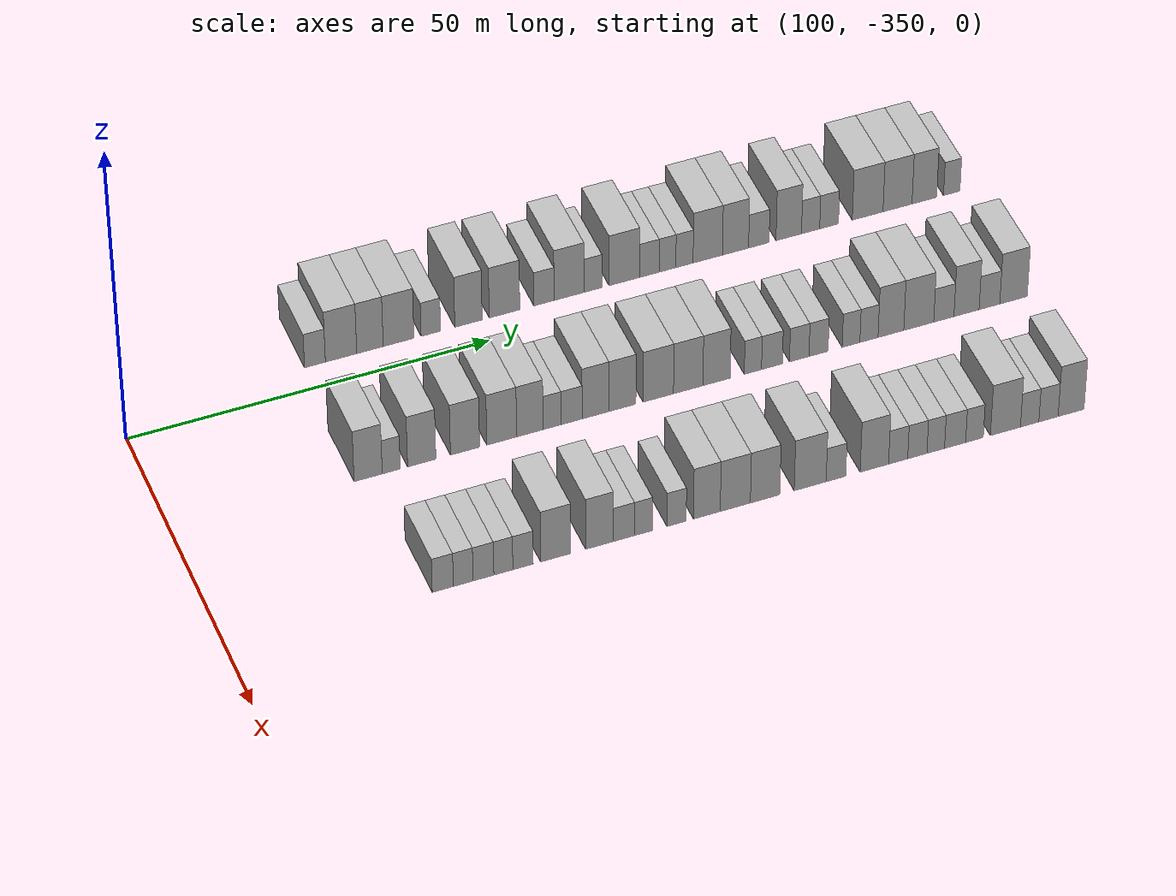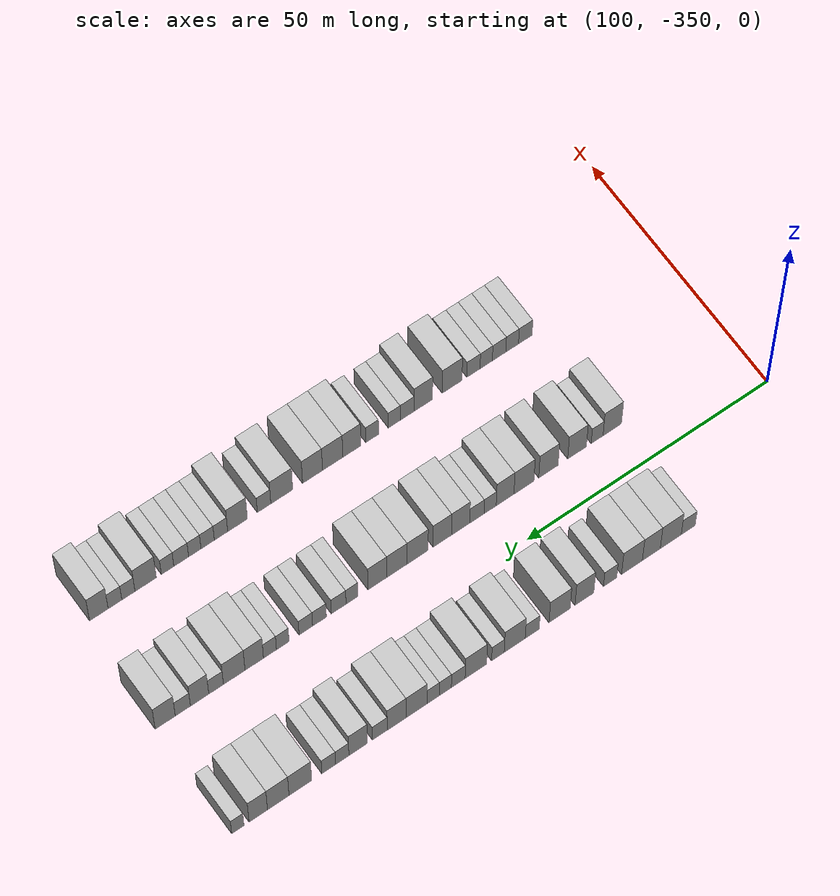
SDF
<sdf version="1.6">
 <world name="default">
  <model name="building_581">
   <static>1</static>
   <pose>91.0000 -322.8173 0 0.000000 0.000000 0.000000</pose>
   <link name="link">
    <pose>0 0 3.00 0 0 0</pose>
    <collision name="collision"><geometry><box><size>10.0000 2.8853 6.0000</size></box></geometry></collision>
    <visual name="visual">
     <cast_shadows>0</cast_shadows>
     <geometry><box><size>10.0000 2.8853 6.0000</size></box></geometry>
     <material>
      <script>
       <uri>model://HANNAS_wall/materials/scripts</uri>
       <uri>model://HANNAS_wall/materials/textures</uri>
       <name>vrc/HANNAS_wall</name>
      </script>
     </material>
    </visual>
   </link>
  </model>
  <model name="building_582">
   <static>1</static>
   <pose>91.0000 -319.1993 0 0.000000 0.000000 0.000000</pose>
   <link name="link">
    <pose>0 0 4.50 0 0 0</pose>
    <collision name="collision"><geometry><box><size>10.0000 4.3508 9.0000</size></box></geometry></collision>
    <visual name="visual">
     <cast_shadows>0</cast_shadows>
     <geometry><box><size>10.0000 4.3508 9.0000</size></box></geometry>
     <material>
      <script>
       <uri>model://HANNAS_wall/materials/scripts</uri>
       <uri>model://HANNAS_wall/materials/textures</uri>
       <name>vrc/HANNAS_wall</name>
      </script>
     </material>
    </visual>
   </link>
  </model>
  <model name="building_583">
   <static>1</static>
   <pose>91.0000 -315.1834 0 0.000000 0.000000 0.000000</pose>
   <link name="link">
    <pose>0 0 4.50 0 0 0</pose>
    <collision name="collision"><geometry><box><size>10.0000 3.6809 9.0000</size></box></geometry></collision>
    <visual name="visual">
     <cast_shadows>0</cast_shadows>
     <geometry><box><size>10.0000 3.6809 9.0000</size></box></geometry>
     <material>
      <script>
       <uri>model://HANNAS_wall/materials/scripts</uri>
       <uri>model://HANNAS_wall/materials/textures</uri>
       <name>vrc/HANNAS_wall</name>
      </script>
     </material>
    </visual>
   </link>
  </model>
  <model name="building_584">
   <static>1</static>
   <pose>91.0000 -311.2035 0 0.000000 0.000000 0.000000</pose>
   <link name="link">
    <pose>0 0 4.50 0 0 0</pose>
    <collision name="collision"><geometry><box><size>10.0000 4.2788 9.0000</size></box></geometry></collision>
    <visual name="visual">
     <cast_shadows>0</cast_shadows>
     <geometry><box><size>10.0000 4.2788 9.0000</size></box></geometry>
     <material>
      <script>
       <uri>model://HANNAS_wall/materials/scripts</uri>
       <uri>model://HANNAS_wall/materials/textures</uri>
       <name>vrc/HANNAS_wall</name>
      </script>
     </material>
    </visual>
   </link>
  </model>
  <model name="building_585">
   <static>1</static>
   <pose>91.0000 -306.7089 0 0.000000 0.000000 0.000000</pose>
   <link name="link">
    <pose>0 0 3.00 0 0 0</pose>
    <collision name="collision"><geometry><box><size>10.0000 2.7103 6.0000</size></box></geometry></collision>
    <visual name="visual">
     <cast_shadows>0</cast_shadows>
     <geometry><box><size>10.0000 2.7103 6.0000</size></box></geometry>
     <material>
      <script>
       <uri>model://HANNAS_wall/materials/scripts</uri>
       <uri>model://HANNAS_wall/materials/textures</uri>
       <name>vrc/HANNAS_wall</name>
      </script>
     </material>
    </visual>
   </link>
  </model>
  <model name="building_586">
   <static>1</static>
   <pose>91.0000 -301.4393 0 0.000000 0.000000 0.000000</pose>
   <link name="link">
    <pose>0 0 4.50 0 0 0</pose>
    <collision name="collision"><geometry><box><size>10.0000 3.8289 9.0000</size></box></geometry></collision>
    <visual name="visual">
     <cast_shadows>0</cast_shadows>
     <geometry><box><size>10.0000 3.8289 9.0000</size></box></geometry>
     <material>
      <script>
       <uri>model://HANNAS_wall/materials/scripts</uri>
       <uri>model://HANNAS_wall/materials/textures</uri>
       <name>vrc/HANNAS_wall</name>
      </script>
     </material>
    </visual>
   </link>
  </model>
  <model name="building_587">
   <static>1</static>
   <pose>91.0000 -296.3792 0 0.000000 0.000000 0.000000</pose>
   <link name="link">
    <pose>0 0 4.50 0 0 0</pose>
    <collision name="collision"><geometry><box><size>10.0000 4.2913 9.0000</size></box></geometry></collision>
    <visual name="visual">
     <cast_shadows>0</cast_shadows>
     <geometry><box><size>10.0000 4.2913 9.0000</size></box></geometry>
     <material>
      <script>
       <uri>model://HANNAS_wall/materials/scripts</uri>
       <uri>model://HANNAS_wall/materials/textures</uri>
       <name>vrc/HANNAS_wall</name>
      </script>
     </material>
    </visual>
   </link>
  </model>
  <model name="building_588">
   <static>1</static>
   <pose>91.0000 -290.8126 0 0.000000 0.000000 0.000000</pose>
   <link name="link">
    <pose>0 0 3.00 0 0 0</pose>
    <collision name="collision"><geometry><box><size>10.0000 2.8419 6.0000</size></box></geometry></collision>
    <visual name="visual">
     <cast_shadows>0</cast_shadows>
     <geometry><box><size>10.0000 2.8419 6.0000</size></box></geometry>
     <material>
      <script>
       <uri>model://HANNAS_wall/materials/scripts</uri>
       <uri>model://HANNAS_wall/materials/textures</uri>
       <name>vrc/HANNAS_wall</name>
      </script>
     </material>
    </visual>
   </link>
  </model>
  <model name="building_589">
   <static>1</static>
   <pose>91.0000 -287.2653 0 0.000000 0.000000 0.000000</pose>
   <link name="link">
    <pose>0 0 4.50 0 0 0</pose>
    <collision name="collision"><geometry><box><size>10.0000 4.2528 9.0000</size></box></geometry></collision>
    <visual name="visual">
     <cast_shadows>0</cast_shadows>
     <geometry><box><size>10.0000 4.2528 9.0000</size></box></geometry>
     <material>
      <script>
       <uri>model://HANNAS_wall/materials/scripts</uri>
       <uri>model://HANNAS_wall/materials/textures</uri>
       <name>vrc/HANNAS_wall</name>
      </script>
     </material>
    </visual>
   </link>
  </model>
  <model name="building_590">
   <static>1</static>
   <pose>91.0000 -283.8666 0 0.000000 0.000000 0.000000</pose>
   <link name="link">
    <pose>0 0 3.00 0 0 0</pose>
    <collision name="collision"><geometry><box><size>10.0000 2.5447 6.0000</size></box></geometry></collision>
    <visual name="visual">
     <cast_shadows>0</cast_shadows>
     <geometry><box><size>10.0000 2.5447 6.0000</size></box></geometry>
     <material>
      <script>
       <uri>model://HANNAS_wall/materials/scripts</uri>
       <uri>model://HANNAS_wall/materials/textures</uri>
       <name>vrc/HANNAS_wall</name>
      </script>
     </material>
    </visual>
   </link>
  </model>
  <model name="building_591">
   <static>1</static>
   <pose>91.0000 -279.4232 0 0.000000 0.000000 0.000000</pose>
   <link name="link">
    <pose>0 0 4.50 0 0 0</pose>
    <collision name="collision"><geometry><box><size>10.0000 4.3420 9.0000</size></box></geometry></collision>
    <visual name="visual">
     <cast_shadows>0</cast_shadows>
     <geometry><box><size>10.0000 4.3420 9.0000</size></box></geometry>
     <material>
      <script>
       <uri>model://HANNAS_wall/materials/scripts</uri>
       <uri>model://HANNAS_wall/materials/textures</uri>
       <name>vrc/HANNAS_wall</name>
      </script>
     </material>
    </visual>
   </link>
  </model>
  <model name="building_592">
   <static>1</static>
   <pose>91.0000 -275.8691 0 0.000000 0.000000 0.000000</pose>
   <link name="link">
    <pose>0 0 3.00 0 0 0</pose>
    <collision name="collision"><geometry><box><size>10.0000 2.7663 6.0000</size></box></geometry></collision>
    <visual name="visual">
     <cast_shadows>0</cast_shadows>
     <geometry><box><size>10.0000 2.7663 6.0000</size></box></geometry>
     <material>
      <script>
       <uri>model://HANNAS_wall/materials/scripts</uri>
       <uri>model://HANNAS_wall/materials/textures</uri>
       <name>vrc/HANNAS_wall</name>
      </script>
     </material>
    </visual>
   </link>
  </model>
  <model name="building_593">
   <static>1</static>
   <pose>91.0000 -273.2827 0 0.000000 0.000000 0.000000</pose>
   <link name="link">
    <pose>0 0 3.00 0 0 0</pose>
    <collision name="collision"><geometry><box><size>10.0000 2.4065 6.0000</size></box></geometry></collision>
    <visual name="visual">
     <cast_shadows>0</cast_shadows>
     <geometry><box><size>10.0000 2.4065 6.0000</size></box></geometry>
     <material>
      <script>
       <uri>model://HANNAS_wall/materials/scripts</uri>
       <uri>model://HANNAS_wall/materials/textures</uri>
       <name>vrc/HANNAS_wall</name>
      </script>
     </material>
    </visual>
   </link>
  </model>
  <model name="building_594">
   <static>1</static>
   <pose>91.0000 -270.8525 0 0.000000 0.000000 0.000000</pose>
   <link name="link">
    <pose>0 0 3.00 0 0 0</pose>
    <collision name="collision"><geometry><box><size>10.0000 2.4539 6.0000</size></box></geometry></collision>
    <visual name="visual">
     <cast_shadows>0</cast_shadows>
     <geometry><box><size>10.0000 2.4539 6.0000</size></box></geometry>
     <material>
      <script>
       <uri>model://HANNAS_wall/materials/scripts</uri>
       <uri>model://HANNAS_wall/materials/textures</uri>
       <name>vrc/HANNAS_wall</name>
      </script>
     </material>
    </visual>
   </link>
  </model>
  <model name="building_595">
   <static>1</static>
   <pose>91.0000 -267.5208 0 0.000000 0.000000 0.000000</pose>
   <link name="link">
    <pose>0 0 4.50 0 0 0</pose>
    <collision name="collision"><geometry><box><size>10.0000 4.2096 9.0000</size></box></geometry></collision>
    <visual name="visual">
     <cast_shadows>0</cast_shadows>
     <geometry><box><size>10.0000 4.2096 9.0000</size></box></geometry>
     <material>
      <script>
       <uri>model://HANNAS_wall/materials/scripts</uri>
       <uri>model://HANNAS_wall/materials/textures</uri>
       <name>vrc/HANNAS_wall</name>
      </script>
     </material>
    </visual>
   </link>
  </model>
  <model name="building_596">
   <static>1</static>
   <pose>91.0000 -263.5389 0 0.000000 0.000000 0.000000</pose>
   <link name="link">
    <pose>0 0 4.50 0 0 0</pose>
    <collision name="collision"><geometry><box><size>10.0000 3.7541 9.0000</size></box></geometry></collision>
    <visual name="visual">
     <cast_shadows>0</cast_shadows>
     <geometry><box><size>10.0000 3.7541 9.0000</size></box></geometry>
     <material>
      <script>
       <uri>model://HANNAS_wall/materials/scripts</uri>
       <uri>model://HANNAS_wall/materials/textures</uri>
       <name>vrc/HANNAS_wall</name>
      </script>
     </material>
    </visual>
   </link>
  </model>
  <model name="building_597">
   <static>1</static>
   <pose>91.0000 -260.1880 0 0.000000 0.000000 0.000000</pose>
   <link name="link">
    <pose>0 0 3.00 0 0 0</pose>
    <collision name="collision"><geometry><box><size>10.0000 2.9478 6.0000</size></box></geometry></collision>
    <visual name="visual">
     <cast_shadows>0</cast_shadows>
     <geometry><box><size>10.0000 2.9478 6.0000</size></box></geometry>
     <material>
      <script>
       <uri>model://HANNAS_wall/materials/scripts</uri>
       <uri>model://HANNAS_wall/materials/textures</uri>
       <name>vrc/HANNAS_wall</name>
      </script>
     </material>
    </visual>
   </link>
  </model>
  <model name="building_598">
   <static>1</static>
   <pose>91.0000 -255.8758 0 0.000000 0.000000 0.000000</pose>
   <link name="link">
    <pose>0 0 4.50 0 0 0</pose>
    <collision name="collision"><geometry><box><size>10.0000 3.6766 9.0000</size></box></geometry></collision>
    <visual name="visual">
     <cast_shadows>0</cast_shadows>
     <geometry><box><size>10.0000 3.6766 9.0000</size></box></geometry>
     <material>
      <script>
       <uri>model://HANNAS_wall/materials/scripts</uri>
       <uri>model://HANNAS_wall/materials/textures</uri>
       <name>vrc/HANNAS_wall</name>
      </script>
     </material>
    </visual>
   </link>
  </model>
  <model name="building_599">
   <static>1</static>
   <pose>91.0000 -252.7217 0 0.000000 0.000000 0.000000</pose>
   <link name="link">
    <pose>0 0 3.00 0 0 0</pose>
    <collision name="collision"><geometry><box><size>10.0000 2.6314 6.0000</size></box></geometry></collision>
    <visual name="visual">
     <cast_shadows>0</cast_shadows>
     <geometry><box><size>10.0000 2.6314 6.0000</size></box></geometry>
     <material>
      <script>
       <uri>model://HANNAS_wall/materials/scripts</uri>
       <uri>model://HANNAS_wall/materials/textures</uri>
       <name>vrc/HANNAS_wall</name>
      </script>
     </material>
    </visual>
   </link>
  </model>
  <model name="building_600">
   <static>1</static>
   <pose>91.0000 -250.0440 0 0.000000 0.000000 0.000000</pose>
   <link name="link">
    <pose>0 0 3.00 0 0 0</pose>
    <collision name="collision"><geometry><box><size>10.0000 2.7241 6.0000</size></box></geometry></collision>
    <visual name="visual">
     <cast_shadows>0</cast_shadows>
     <geometry><box><size>10.0000 2.7241 6.0000</size></box></geometry>
     <material>
      <script>
       <uri>model://HANNAS_wall/materials/scripts</uri>
       <uri>model://HANNAS_wall/materials/textures</uri>
       <name>vrc/HANNAS_wall</name>
      </script>
     </material>
    </visual>
   </link>
  </model>
  <model name="building_601">
   <static>1</static>
   <pose>91.0000 -244.4460 0 0.000000 0.000000 0.000000</pose>
   <link name="link">
    <pose>0 0 4.50 0 0 0</pose>
    <collision name="collision"><geometry><box><size>10.0000 4.4718 9.0000</size></box></geometry></collision>
    <visual name="visual">
     <cast_shadows>0</cast_shadows>
     <geometry><box><size>10.0000 4.4718 9.0000</size></box></geometry>
     <material>
      <script>
       <uri>model://HANNAS_wall/materials/scripts</uri>
       <uri>model://HANNAS_wall/materials/textures</uri>
       <name>vrc/HANNAS_wall</name>
      </script>
     </material>
    </visual>
   </link>
  </model>
  <model name="building_602">
   <static>1</static>
   <pose>91.0000 -240.0981 0 0.000000 0.000000 0.000000</pose>
   <link name="link">
    <pose>0 0 4.50 0 0 0</pose>
    <collision name="collision"><geometry><box><size>10.0000 4.2241 9.0000</size></box></geometry></collision>
    <visual name="visual">
     <cast_shadows>0</cast_shadows>
     <geometry><box><size>10.0000 4.2241 9.0000</size></box></geometry>
     <material>
      <script>
       <uri>model://HANNAS_wall/materials/scripts</uri>
       <uri>model://HANNAS_wall/materials/textures</uri>
       <name>vrc/HANNAS_wall</name>
      </script>
     </material>
    </visual>
   </link>
  </model>
  <model name="building_603">
   <static>1</static>
   <pose>91.0000 -236.1819 0 0.000000 0.000000 0.000000</pose>
   <link name="link">
    <pose>0 0 4.50 0 0 0</pose>
    <collision name="collision"><geometry><box><size>10.0000 3.6084 9.0000</size></box></geometry></collision>
    <visual name="visual">
     <cast_shadows>0</cast_shadows>
     <geometry><box><size>10.0000 3.6084 9.0000</size></box></geometry>
     <material>
      <script>
       <uri>model://HANNAS_wall/materials/scripts</uri>
       <uri>model://HANNAS_wall/materials/textures</uri>
       <name>vrc/HANNAS_wall</name>
      </script>
     </material>
    </visual>
   </link>
  </model>
  <model name="building_604">
   <static>1</static>
   <pose>91.0000 -232.1755 0 0.000000 0.000000 0.000000</pose>
   <link name="link">
    <pose>0 0 3.00 0 0 0</pose>
    <collision name="collision"><geometry><box><size>10.0000 2.4043 6.0000</size></box></geometry></collision>
    <visual name="visual">
     <cast_shadows>0</cast_shadows>
     <geometry><box><size>10.0000 2.4043 6.0000</size></box></geometry>
     <material>
      <script>
       <uri>model://HANNAS_wall/materials/scripts</uri>
       <uri>model://HANNAS_wall/materials/textures</uri>
       <name>vrc/HANNAS_wall</name>
      </script>
     </material>
    </visual>
   </link>
  </model>
  <model name="building_763">
   <static>1</static>
   <pose>113.0000 -323.3386 0 0.000000 0.000000 0.000000</pose>
   <link name="link">
    <pose>0 0 4.50 0 0 0</pose>
    <collision name="collision"><geometry><box><size>10.0000 3.8331 9.0000</size></box></geometry></collision>
    <visual name="visual">
     <cast_shadows>0</cast_shadows>
     <geometry><box><size>10.0000 3.8331 9.0000</size></box></geometry>
     <material>
      <script>
       <uri>model://HANNAS_wall/materials/scripts</uri>
       <uri>model://HANNAS_wall/materials/textures</uri>
       <name>vrc/HANNAS_wall</name>
      </script>
     </material>
    </visual>
   </link>
  </model>
  <model name="building_764">
   <static>1</static>
   <pose>113.0000 -320.1922 0 0.000000 0.000000 0.000000</pose>
   <link name="link">
    <pose>0 0 3.00 0 0 0</pose>
    <collision name="collision"><geometry><box><size>10.0000 2.4598 6.0000</size></box></geometry></collision>
    <visual name="visual">
     <cast_shadows>0</cast_shadows>
     <geometry><box><size>10.0000 2.4598 6.0000</size></box></geometry>
     <material>
      <script>
       <uri>model://HANNAS_wall/materials/scripts</uri>
       <uri>model://HANNAS_wall/materials/textures</uri>
       <name>vrc/HANNAS_wall</name>
      </script>
     </material>
    </visual>
   </link>
  </model>
  <model name="building_765">
   <static>1</static>
   <pose>113.0000 -316.0291 0 0.000000 0.000000 0.000000</pose>
   <link name="link">
    <pose>0 0 4.50 0 0 0</pose>
    <collision name="collision"><geometry><box><size>10.0000 3.8664 9.0000</size></box></geometry></collision>
    <visual name="visual">
     <cast_shadows>0</cast_shadows>
     <geometry><box><size>10.0000 3.8664 9.0000</size></box></geometry>
     <material>
      <script>
       <uri>model://HANNAS_wall/materials/scripts</uri>
       <uri>model://HANNAS_wall/materials/textures</uri>
       <name>vrc/HANNAS_wall</name>
      </script>
     </material>
    </visual>
   </link>
  </model>
  <model name="building_766">
   <static>1</static>
   <pose>113.0000 -310.1003 0 0.000000 0.000000 0.000000</pose>
   <link name="link">
    <pose>0 0 4.50 0 0 0</pose>
    <collision name="collision"><geometry><box><size>10.0000 3.9911 9.0000</size></box></geometry></collision>
    <visual name="visual">
     <cast_shadows>0</cast_shadows>
     <geometry><box><size>10.0000 3.9911 9.0000</size></box></geometry>
     <material>
      <script>
       <uri>model://HANNAS_wall/materials/scripts</uri>
       <uri>model://HANNAS_wall/materials/textures</uri>
       <name>vrc/HANNAS_wall</name>
      </script>
     </material>
    </visual>
   </link>
  </model>
  <model name="building_767">
   <static>1</static>
   <pose>113.0000 -305.0506 0 0.000000 0.000000 0.000000</pose>
   <link name="link">
    <pose>0 0 4.50 0 0 0</pose>
    <collision name="collision"><geometry><box><size>10.0000 4.1084 9.0000</size></box></geometry></collision>
    <visual name="visual">
     <cast_shadows>0</cast_shadows>
     <geometry><box><size>10.0000 4.1084 9.0000</size></box></geometry>
     <material>
      <script>
       <uri>model://HANNAS_wall/materials/scripts</uri>
       <uri>model://HANNAS_wall/materials/textures</uri>
       <name>vrc/HANNAS_wall</name>
      </script>
     </material>
    </visual>
   </link>
  </model>
  <model name="building_768">
   <static>1</static>
   <pose>113.0000 -301.1719 0 0.000000 0.000000 0.000000</pose>
   <link name="link">
    <pose>0 0 4.50 0 0 0</pose>
    <collision name="collision"><geometry><box><size>10.0000 3.6490 9.0000</size></box></geometry></collision>
    <visual name="visual">
     <cast_shadows>0</cast_shadows>
     <geometry><box><size>10.0000 3.6490 9.0000</size></box></geometry>
     <material>
      <script>
       <uri>model://HANNAS_wall/materials/scripts</uri>
       <uri>model://HANNAS_wall/materials/textures</uri>
       <name>vrc/HANNAS_wall</name>
      </script>
     </material>
    </visual>
   </link>
  </model>
  <model name="building_769">
   <static>1</static>
   <pose>113.0000 -298.1027 0 0.000000 0.000000 0.000000</pose>
   <link name="link">
    <pose>0 0 3.00 0 0 0</pose>
    <collision name="collision"><geometry><box><size>10.0000 2.4894 6.0000</size></box></geometry></collision>
    <visual name="visual">
     <cast_shadows>0</cast_shadows>
     <geometry><box><size>10.0000 2.4894 6.0000</size></box></geometry>
     <material>
      <script>
       <uri>model://HANNAS_wall/materials/scripts</uri>
       <uri>model://HANNAS_wall/materials/textures</uri>
       <name>vrc/HANNAS_wall</name>
      </script>
     </material>
    </visual>
   </link>
  </model>
  <model name="building_770">
   <static>1</static>
   <pose>113.0000 -295.3976 0 0.000000 0.000000 0.000000</pose>
   <link name="link">
    <pose>0 0 3.00 0 0 0</pose>
    <collision name="collision"><geometry><box><size>10.0000 2.9209 6.0000</size></box></geometry></collision>
    <visual name="visual">
     <cast_shadows>0</cast_shadows>
     <geometry><box><size>10.0000 2.9209 6.0000</size></box></geometry>
     <material>
      <script>
       <uri>model://HANNAS_wall/materials/scripts</uri>
       <uri>model://HANNAS_wall/materials/textures</uri>
       <name>vrc/HANNAS_wall</name>
      </script>
     </material>
    </visual>
   </link>
  </model>
  <model name="building_771">
   <static>1</static>
   <pose>113.0000 -292.0720 0 0.000000 0.000000 0.000000</pose>
   <link name="link">
    <pose>0 0 4.50 0 0 0</pose>
    <collision name="collision"><geometry><box><size>10.0000 3.7302 9.0000</size></box></geometry></collision>
    <visual name="visual">
     <cast_shadows>0</cast_shadows>
     <geometry><box><size>10.0000 3.7302 9.0000</size></box></geometry>
     <material>
      <script>
       <uri>model://HANNAS_wall/materials/scripts</uri>
       <uri>model://HANNAS_wall/materials/textures</uri>
       <name>vrc/HANNAS_wall</name>
      </script>
     </material>
    </visual>
   </link>
  </model>
  <model name="building_772">
   <static>1</static>
   <pose>113.0000 -288.3327 0 0.000000 0.000000 0.000000</pose>
   <link name="link">
    <pose>0 0 4.50 0 0 0</pose>
    <collision name="collision"><geometry><box><size>10.0000 3.7483 9.0000</size></box></geometry></collision>
    <visual name="visual">
     <cast_shadows>0</cast_shadows>
     <geometry><box><size>10.0000 3.7483 9.0000</size></box></geometry>
     <material>
      <script>
       <uri>model://HANNAS_wall/materials/scripts</uri>
       <uri>model://HANNAS_wall/materials/textures</uri>
       <name>vrc/HANNAS_wall</name>
      </script>
     </material>
    </visual>
   </link>
  </model>
  <model name="building_773">
   <static>1</static>
   <pose>113.0000 -283.3325 0 0.000000 0.000000 0.000000</pose>
   <link name="link">
    <pose>0 0 4.50 0 0 0</pose>
    <collision name="collision"><geometry><box><size>10.0000 4.2520 9.0000</size></box></geometry></collision>
    <visual name="visual">
     <cast_shadows>0</cast_shadows>
     <geometry><box><size>10.0000 4.2520 9.0000</size></box></geometry>
     <material>
      <script>
       <uri>model://HANNAS_wall/materials/scripts</uri>
       <uri>model://HANNAS_wall/materials/textures</uri>
       <name>vrc/HANNAS_wall</name>
      </script>
     </material>
    </visual>
   </link>
  </model>
  <model name="building_774">
   <static>1</static>
   <pose>113.0000 -279.1444 0 0.000000 0.000000 0.000000</pose>
   <link name="link">
    <pose>0 0 4.50 0 0 0</pose>
    <collision name="collision"><geometry><box><size>10.0000 4.1243 9.0000</size></box></geometry></collision>
    <visual name="visual">
     <cast_shadows>0</cast_shadows>
     <geometry><box><size>10.0000 4.1243 9.0000</size></box></geometry>
     <material>
      <script>
       <uri>model://HANNAS_wall/materials/scripts</uri>
       <uri>model://HANNAS_wall/materials/textures</uri>
       <name>vrc/HANNAS_wall</name>
      </script>
     </material>
    </visual>
   </link>
  </model>
  <model name="building_775">
   <static>1</static>
   <pose>113.0000 -275.1761 0 0.000000 0.000000 0.000000</pose>
   <link name="link">
    <pose>0 0 4.50 0 0 0</pose>
    <collision name="collision"><geometry><box><size>10.0000 3.8122 9.0000</size></box></geometry></collision>
    <visual name="visual">
     <cast_shadows>0</cast_shadows>
     <geometry><box><size>10.0000 3.8122 9.0000</size></box></geometry>
     <material>
      <script>
       <uri>model://HANNAS_wall/materials/scripts</uri>
       <uri>model://HANNAS_wall/materials/textures</uri>
       <name>vrc/HANNAS_wall</name>
      </script>
     </material>
    </visual>
   </link>
  </model>
  <model name="building_776">
   <static>1</static>
   <pose>113.0000 -270.0573 0 0.000000 0.000000 0.000000</pose>
   <link name="link">
    <pose>0 0 3.00 0 0 0</pose>
    <collision name="collision"><geometry><box><size>10.0000 2.4254 6.0000</size></box></geometry></collision>
    <visual name="visual">
     <cast_shadows>0</cast_shadows>
     <geometry><box><size>10.0000 2.4254 6.0000</size></box></geometry>
     <material>
      <script>
       <uri>model://HANNAS_wall/materials/scripts</uri>
       <uri>model://HANNAS_wall/materials/textures</uri>
       <name>vrc/HANNAS_wall</name>
      </script>
     </material>
    </visual>
   </link>
  </model>
  <model name="building_777">
   <static>1</static>
   <pose>113.0000 -267.3703 0 0.000000 0.000000 0.000000</pose>
   <link name="link">
    <pose>0 0 3.00 0 0 0</pose>
    <collision name="collision"><geometry><box><size>10.0000 2.9486 6.0000</size></box></geometry></collision>
    <visual name="visual">
     <cast_shadows>0</cast_shadows>
     <geometry><box><size>10.0000 2.9486 6.0000</size></box></geometry>
     <material>
      <script>
       <uri>model://HANNAS_wall/materials/scripts</uri>
       <uri>model://HANNAS_wall/materials/textures</uri>
       <name>vrc/HANNAS_wall</name>
      </script>
     </material>
    </visual>
   </link>
  </model>
  <model name="building_778">
   <static>1</static>
   <pose>113.0000 -263.5137 0 0.000000 0.000000 0.000000</pose>
   <link name="link">
    <pose>0 0 3.00 0 0 0</pose>
    <collision name="collision"><geometry><box><size>10.0000 2.7647 6.0000</size></box></geometry></collision>
    <visual name="visual">
     <cast_shadows>0</cast_shadows>
     <geometry><box><size>10.0000 2.7647 6.0000</size></box></geometry>
     <material>
      <script>
       <uri>model://HANNAS_wall/materials/scripts</uri>
       <uri>model://HANNAS_wall/materials/textures</uri>
       <name>vrc/HANNAS_wall</name>
      </script>
     </material>
    </visual>
   </link>
  </model>
  <model name="building_779">
   <static>1</static>
   <pose>113.0000 -260.7798 0 0.000000 0.000000 0.000000</pose>
   <link name="link">
    <pose>0 0 3.00 0 0 0</pose>
    <collision name="collision"><geometry><box><size>10.0000 2.7031 6.0000</size></box></geometry></collision>
    <visual name="visual">
     <cast_shadows>0</cast_shadows>
     <geometry><box><size>10.0000 2.7031 6.0000</size></box></geometry>
     <material>
      <script>
       <uri>model://HANNAS_wall/materials/scripts</uri>
       <uri>model://HANNAS_wall/materials/textures</uri>
       <name>vrc/HANNAS_wall</name>
      </script>
     </material>
    </visual>
   </link>
  </model>
  <model name="building_780">
   <static>1</static>
   <pose>113.0000 -256.1683 0 0.000000 0.000000 0.000000</pose>
   <link name="link">
    <pose>0 0 3.00 0 0 0</pose>
    <collision name="collision"><geometry><box><size>10.0000 2.5198 6.0000</size></box></geometry></collision>
    <visual name="visual">
     <cast_shadows>0</cast_shadows>
     <geometry><box><size>10.0000 2.5198 6.0000</size></box></geometry>
     <material>
      <script>
       <uri>model://HANNAS_wall/materials/scripts</uri>
       <uri>model://HANNAS_wall/materials/textures</uri>
       <name>vrc/HANNAS_wall</name>
      </script>
     </material>
    </visual>
   </link>
  </model>
  <model name="building_781">
   <static>1</static>
   <pose>113.0000 -253.6186 0 0.000000 0.000000 0.000000</pose>
   <link name="link">
    <pose>0 0 3.00 0 0 0</pose>
    <collision name="collision"><geometry><box><size>10.0000 2.5796 6.0000</size></box></geometry></collision>
    <visual name="visual">
     <cast_shadows>0</cast_shadows>
     <geometry><box><size>10.0000 2.5796 6.0000</size></box></geometry>
     <material>
      <script>
       <uri>model://HANNAS_wall/materials/scripts</uri>
       <uri>model://HANNAS_wall/materials/textures</uri>
       <name>vrc/HANNAS_wall</name>
      </script>
     </material>
    </visual>
   </link>
  </model>
  <model name="building_782">
   <static>1</static>
   <pose>113.0000 -250.4915 0 0.000000 0.000000 0.000000</pose>
   <link name="link">
    <pose>0 0 4.50 0 0 0</pose>
    <collision name="collision"><geometry><box><size>10.0000 3.6746 9.0000</size></box></geometry></collision>
    <visual name="visual">
     <cast_shadows>0</cast_shadows>
     <geometry><box><size>10.0000 3.6746 9.0000</size></box></geometry>
     <material>
      <script>
       <uri>model://HANNAS_wall/materials/scripts</uri>
       <uri>model://HANNAS_wall/materials/textures</uri>
       <name>vrc/HANNAS_wall</name>
      </script>
     </material>
    </visual>
   </link>
  </model>
  <model name="building_783">
   <static>1</static>
   <pose>113.0000 -246.5127 0 0.000000 0.000000 0.000000</pose>
   <link name="link">
    <pose>0 0 4.50 0 0 0</pose>
    <collision name="collision"><geometry><box><size>10.0000 4.2831 9.0000</size></box></geometry></collision>
    <visual name="visual">
     <cast_shadows>0</cast_shadows>
     <geometry><box><size>10.0000 4.2831 9.0000</size></box></geometry>
     <material>
      <script>
       <uri>model://HANNAS_wall/materials/scripts</uri>
       <uri>model://HANNAS_wall/materials/textures</uri>
       <name>vrc/HANNAS_wall</name>
      </script>
     </material>
    </visual>
   </link>
  </model>
  <model name="building_784">
   <static>1</static>
   <pose>113.0000 -242.9189 0 0.000000 0.000000 0.000000</pose>
   <link name="link">
    <pose>0 0 3.00 0 0 0</pose>
    <collision name="collision"><geometry><box><size>10.0000 2.9045 6.0000</size></box></geometry></collision>
    <visual name="visual">
     <cast_shadows>0</cast_shadows>
     <geometry><box><size>10.0000 2.9045 6.0000</size></box></geometry>
     <material>
      <script>
       <uri>model://HANNAS_wall/materials/scripts</uri>
       <uri>model://HANNAS_wall/materials/textures</uri>
       <name>vrc/HANNAS_wall</name>
      </script>
     </material>
    </visual>
   </link>
  </model>
  <model name="building_785">
   <static>1</static>
   <pose>113.0000 -239.6619 0 0.000000 0.000000 0.000000</pose>
   <link name="link">
    <pose>0 0 4.50 0 0 0</pose>
    <collision name="collision"><geometry><box><size>10.0000 3.6095 9.0000</size></box></geometry></collision>
    <visual name="visual">
     <cast_shadows>0</cast_shadows>
     <geometry><box><size>10.0000 3.6095 9.0000</size></box></geometry>
     <material>
      <script>
       <uri>model://HANNAS_wall/materials/scripts</uri>
       <uri>model://HANNAS_wall/materials/textures</uri>
       <name>vrc/HANNAS_wall</name>
      </script>
     </material>
    </visual>
   </link>
  </model>
  <model name="building_786">
   <static>1</static>
   <pose>113.0000 -236.3671 0 0.000000 0.000000 0.000000</pose>
   <link name="link">
    <pose>0 0 3.00 0 0 0</pose>
    <collision name="collision"><geometry><box><size>10.0000 2.9800 6.0000</size></box></geometry></collision>
    <visual name="visual">
     <cast_shadows>0</cast_shadows>
     <geometry><box><size>10.0000 2.9800 6.0000</size></box></geometry>
     <material>
      <script>
       <uri>model://HANNAS_wall/materials/scripts</uri>
       <uri>model://HANNAS_wall/materials/textures</uri>
       <name>vrc/HANNAS_wall</name>
      </script>
     </material>
    </visual>
   </link>
  </model>
  <model name="building_787">
   <static>1</static>
   <pose>113.0000 -232.8969 0 0.000000 0.000000 0.000000</pose>
   <link name="link">
    <pose>0 0 4.50 0 0 0</pose>
    <collision name="collision"><geometry><box><size>10.0000 3.9605 9.0000</size></box></geometry></collision>
    <visual name="visual">
     <cast_shadows>0</cast_shadows>
     <geometry><box><size>10.0000 3.9605 9.0000</size></box></geometry>
     <material>
      <script>
       <uri>model://HANNAS_wall/materials/scripts</uri>
       <uri>model://HANNAS_wall/materials/textures</uri>
       <name>vrc/HANNAS_wall</name>
      </script>
     </material>
    </visual>
   </link>
  </model>
  <model name="building_937">
   <static>1</static>
   <pose>135.0000 -321.2606 0 0.000000 0.000000 0.000000</pose>
   <link name="link">
    <pose>0 0 3.00 0 0 0</pose>
    <collision name="collision"><geometry><box><size>10.0000 2.8324 6.0000</size></box></geometry></collision>
    <visual name="visual">
     <cast_shadows>0</cast_shadows>
     <geometry><box><size>10.0000 2.8324 6.0000</size></box></geometry>
     <material>
      <script>
       <uri>model://HANNAS_wall/materials/scripts</uri>
       <uri>model://HANNAS_wall/materials/textures</uri>
       <name>vrc/HANNAS_wall</name>
      </script>
     </material>
    </visual>
   </link>
  </model>
  <model name="building_938">
   <static>1</static>
   <pose>135.0000 -318.5210 0 0.000000 0.000000 0.000000</pose>
   <link name="link">
    <pose>0 0 3.00 0 0 0</pose>
    <collision name="collision"><geometry><box><size>10.0000 2.6469 6.0000</size></box></geometry></collision>
    <visual name="visual">
     <cast_shadows>0</cast_shadows>
     <geometry><box><size>10.0000 2.6469 6.0000</size></box></geometry>
     <material>
      <script>
       <uri>model://HANNAS_wall/materials/scripts</uri>
       <uri>model://HANNAS_wall/materials/textures</uri>
       <name>vrc/HANNAS_wall</name>
      </script>
     </material>
    </visual>
   </link>
  </model>
  <model name="building_939">
   <static>1</static>
   <pose>135.0000 -315.7955 0 0.000000 0.000000 0.000000</pose>
   <link name="link">
    <pose>0 0 3.00 0 0 0</pose>
    <collision name="collision"><geometry><box><size>10.0000 2.8041 6.0000</size></box></geometry></collision>
    <visual name="visual">
     <cast_shadows>0</cast_shadows>
     <geometry><box><size>10.0000 2.8041 6.0000</size></box></geometry>
     <material>
      <script>
       <uri>model://HANNAS_wall/materials/scripts</uri>
       <uri>model://HANNAS_wall/materials/textures</uri>
       <name>vrc/HANNAS_wall</name>
      </script>
     </material>
    </visual>
   </link>
  </model>
  <model name="building_940">
   <static>1</static>
   <pose>135.0000 -313.1131 0 0.000000 0.000000 0.000000</pose>
   <link name="link">
    <pose>0 0 3.00 0 0 0</pose>
    <collision name="collision"><geometry><box><size>10.0000 2.5607 6.0000</size></box></geometry></collision>
    <visual name="visual">
     <cast_shadows>0</cast_shadows>
     <geometry><box><size>10.0000 2.5607 6.0000</size></box></geometry>
     <material>
      <script>
       <uri>model://HANNAS_wall/materials/scripts</uri>
       <uri>model://HANNAS_wall/materials/textures</uri>
       <name>vrc/HANNAS_wall</name>
      </script>
     </material>
    </visual>
   </link>
  </model>
  <model name="building_941">
   <static>1</static>
   <pose>135.0000 -310.4584 0 0.000000 0.000000 0.000000</pose>
   <link name="link">
    <pose>0 0 3.00 0 0 0</pose>
    <collision name="collision"><geometry><box><size>10.0000 2.7487 6.0000</size></box></geometry></collision>
    <visual name="visual">
     <cast_shadows>0</cast_shadows>
     <geometry><box><size>10.0000 2.7487 6.0000</size></box></geometry>
     <material>
      <script>
       <uri>model://HANNAS_wall/materials/scripts</uri>
       <uri>model://HANNAS_wall/materials/textures</uri>
       <name>vrc/HANNAS_wall</name>
      </script>
     </material>
    </visual>
   </link>
  </model>
  <model name="building_942">
   <static>1</static>
   <pose>135.0000 -306.0339 0 0.000000 0.000000 0.000000</pose>
   <link name="link">
    <pose>0 0 4.50 0 0 0</pose>
    <collision name="collision"><geometry><box><size>10.0000 4.1004 9.0000</size></box></geometry></collision>
    <visual name="visual">
     <cast_shadows>0</cast_shadows>
     <geometry><box><size>10.0000 4.1004 9.0000</size></box></geometry>
     <material>
      <script>
       <uri>model://HANNAS_wall/materials/scripts</uri>
       <uri>model://HANNAS_wall/materials/textures</uri>
       <name>vrc/HANNAS_wall</name>
      </script>
     </material>
    </visual>
   </link>
  </model>
  <model name="building_943">
   <static>1</static>
   <pose>135.0000 -300.0850 0 0.000000 0.000000 0.000000</pose>
   <link name="link">
    <pose>0 0 4.50 0 0 0</pose>
    <collision name="collision"><geometry><box><size>10.0000 3.7973 9.0000</size></box></geometry></collision>
    <visual name="visual">
     <cast_shadows>0</cast_shadows>
     <geometry><box><size>10.0000 3.7973 9.0000</size></box></geometry>
     <material>
      <script>
       <uri>model://HANNAS_wall/materials/scripts</uri>
       <uri>model://HANNAS_wall/materials/textures</uri>
       <name>vrc/HANNAS_wall</name>
      </script>
     </material>
    </visual>
   </link>
  </model>
  <model name="building_944">
   <static>1</static>
   <pose>135.0000 -296.7541 0 0.000000 0.000000 0.000000</pose>
   <link name="link">
    <pose>0 0 3.00 0 0 0</pose>
    <collision name="collision"><geometry><box><size>10.0000 2.8646 6.0000</size></box></geometry></collision>
    <visual name="visual">
     <cast_shadows>0</cast_shadows>
     <geometry><box><size>10.0000 2.8646 6.0000</size></box></geometry>
     <material>
      <script>
       <uri>model://HANNAS_wall/materials/scripts</uri>
       <uri>model://HANNAS_wall/materials/textures</uri>
       <name>vrc/HANNAS_wall</name>
      </script>
     </material>
    </visual>
   </link>
  </model>
  <model name="building_945">
   <static>1</static>
   <pose>135.0000 -294.1050 0 0.000000 0.000000 0.000000</pose>
   <link name="link">
    <pose>0 0 3.00 0 0 0</pose>
    <collision name="collision"><geometry><box><size>10.0000 2.4335 6.0000</size></box></geometry></collision>
    <visual name="visual">
     <cast_shadows>0</cast_shadows>
     <geometry><box><size>10.0000 2.4335 6.0000</size></box></geometry>
     <material>
      <script>
       <uri>model://HANNAS_wall/materials/scripts</uri>
       <uri>model://HANNAS_wall/materials/textures</uri>
       <name>vrc/HANNAS_wall</name>
      </script>
     </material>
    </visual>
   </link>
  </model>
  <model name="building_946">
   <static>1</static>
   <pose>135.0000 -289.5709 0 0.000000 0.000000 0.000000</pose>
   <link name="link">
    <pose>0 0 3.00 0 0 0</pose>
    <collision name="collision"><geometry><box><size>10.0000 2.6347 6.0000</size></box></geometry></collision>
    <visual name="visual">
     <cast_shadows>0</cast_shadows>
     <geometry><box><size>10.0000 2.6347 6.0000</size></box></geometry>
     <material>
      <script>
       <uri>model://HANNAS_wall/materials/scripts</uri>
       <uri>model://HANNAS_wall/materials/textures</uri>
       <name>vrc/HANNAS_wall</name>
      </script>
     </material>
    </visual>
   </link>
  </model>
  <model name="building_947">
   <static>1</static>
   <pose>135.0000 -285.4123 0 0.000000 0.000000 0.000000</pose>
   <link name="link">
    <pose>0 0 4.50 0 0 0</pose>
    <collision name="collision"><geometry><box><size>10.0000 3.6825 9.0000</size></box></geometry></collision>
    <visual name="visual">
     <cast_shadows>0</cast_shadows>
     <geometry><box><size>10.0000 3.6825 9.0000</size></box></geometry>
     <material>
      <script>
       <uri>model://HANNAS_wall/materials/scripts</uri>
       <uri>model://HANNAS_wall/materials/textures</uri>
       <name>vrc/HANNAS_wall</name>
      </script>
     </material>
    </visual>
   </link>
  </model>
  <model name="building_948">
   <static>1</static>
   <pose>135.0000 -281.4983 0 0.000000 0.000000 0.000000</pose>
   <link name="link">
    <pose>0 0 4.50 0 0 0</pose>
    <collision name="collision"><geometry><box><size>10.0000 4.1455 9.0000</size></box></geometry></collision>
    <visual name="visual">
     <cast_shadows>0</cast_shadows>
     <geometry><box><size>10.0000 4.1455 9.0000</size></box></geometry>
     <material>
      <script>
       <uri>model://HANNAS_wall/materials/scripts</uri>
       <uri>model://HANNAS_wall/materials/textures</uri>
       <name>vrc/HANNAS_wall</name>
      </script>
     </material>
    </visual>
   </link>
  </model>
  <model name="building_949">
   <static>1</static>
   <pose>135.0000 -277.3986 0 0.000000 0.000000 0.000000</pose>
   <link name="link">
    <pose>0 0 4.50 0 0 0</pose>
    <collision name="collision"><geometry><box><size>10.0000 4.0538 9.0000</size></box></geometry></collision>
    <visual name="visual">
     <cast_shadows>0</cast_shadows>
     <geometry><box><size>10.0000 4.0538 9.0000</size></box></geometry>
     <material>
      <script>
       <uri>model://HANNAS_wall/materials/scripts</uri>
       <uri>model://HANNAS_wall/materials/textures</uri>
       <name>vrc/HANNAS_wall</name>
      </script>
     </material>
    </visual>
   </link>
  </model>
  <model name="building_950">
   <static>1</static>
   <pose>135.0000 -271.1560 0 0.000000 0.000000 0.000000</pose>
   <link name="link">
    <pose>0 0 4.50 0 0 0</pose>
    <collision name="collision"><geometry><box><size>10.0000 4.4314 9.0000</size></box></geometry></collision>
    <visual name="visual">
     <cast_shadows>0</cast_shadows>
     <geometry><box><size>10.0000 4.4314 9.0000</size></box></geometry>
     <material>
      <script>
       <uri>model://HANNAS_wall/materials/scripts</uri>
       <uri>model://HANNAS_wall/materials/textures</uri>
       <name>vrc/HANNAS_wall</name>
      </script>
     </material>
    </visual>
   </link>
  </model>
  <model name="building_951">
   <static>1</static>
   <pose>135.0000 -267.5760 0 0.000000 0.000000 0.000000</pose>
   <link name="link">
    <pose>0 0 3.00 0 0 0</pose>
    <collision name="collision"><geometry><box><size>10.0000 2.7286 6.0000</size></box></geometry></collision>
    <visual name="visual">
     <cast_shadows>0</cast_shadows>
     <geometry><box><size>10.0000 2.7286 6.0000</size></box></geometry>
     <material>
      <script>
       <uri>model://HANNAS_wall/materials/scripts</uri>
       <uri>model://HANNAS_wall/materials/textures</uri>
       <name>vrc/HANNAS_wall</name>
      </script>
     </material>
    </visual>
   </link>
  </model>
  <model name="building_952">
   <static>1</static>
   <pose>135.0000 -262.2258 0 0.000000 0.000000 0.000000</pose>
   <link name="link">
    <pose>0 0 4.50 0 0 0</pose>
    <collision name="collision"><geometry><box><size>10.0000 3.9718 9.0000</size></box></geometry></collision>
    <visual name="visual">
     <cast_shadows>0</cast_shadows>
     <geometry><box><size>10.0000 3.9718 9.0000</size></box></geometry>
     <material>
      <script>
       <uri>model://HANNAS_wall/materials/scripts</uri>
       <uri>model://HANNAS_wall/materials/textures</uri>
       <name>vrc/HANNAS_wall</name>
      </script>
     </material>
    </visual>
   </link>
  </model>
  <model name="building_953">
   <static>1</static>
   <pose>135.0000 -258.9043 0 0.000000 0.000000 0.000000</pose>
   <link name="link">
    <pose>0 0 3.00 0 0 0</pose>
    <collision name="collision"><geometry><box><size>10.0000 2.6713 6.0000</size></box></geometry></collision>
    <visual name="visual">
     <cast_shadows>0</cast_shadows>
     <geometry><box><size>10.0000 2.6713 6.0000</size></box></geometry>
     <material>
      <script>
       <uri>model://HANNAS_wall/materials/scripts</uri>
       <uri>model://HANNAS_wall/materials/textures</uri>
       <name>vrc/HANNAS_wall</name>
      </script>
     </material>
    </visual>
   </link>
  </model>
  <model name="building_954">
   <static>1</static>
   <pose>135.0000 -256.2209 0 0.000000 0.000000 0.000000</pose>
   <link name="link">
    <pose>0 0 3.00 0 0 0</pose>
    <collision name="collision"><geometry><box><size>10.0000 2.6955 6.0000</size></box></geometry></collision>
    <visual name="visual">
     <cast_shadows>0</cast_shadows>
     <geometry><box><size>10.0000 2.6955 6.0000</size></box></geometry>
     <material>
      <script>
       <uri>model://HANNAS_wall/materials/scripts</uri>
       <uri>model://HANNAS_wall/materials/textures</uri>
       <name>vrc/HANNAS_wall</name>
      </script>
     </material>
    </visual>
   </link>
  </model>
  <model name="building_955">
   <static>1</static>
   <pose>135.0000 -253.6402 0 0.000000 0.000000 0.000000</pose>
   <link name="link">
    <pose>0 0 3.00 0 0 0</pose>
    <collision name="collision"><geometry><box><size>10.0000 2.4658 6.0000</size></box></geometry></collision>
    <visual name="visual">
     <cast_shadows>0</cast_shadows>
     <geometry><box><size>10.0000 2.4658 6.0000</size></box></geometry>
     <material>
      <script>
       <uri>model://HANNAS_wall/materials/scripts</uri>
       <uri>model://HANNAS_wall/materials/textures</uri>
       <name>vrc/HANNAS_wall</name>
      </script>
     </material>
    </visual>
   </link>
  </model>
  <model name="building_956">
   <static>1</static>
   <pose>135.0000 -250.9271 0 0.000000 0.000000 0.000000</pose>
   <link name="link">
    <pose>0 0 3.00 0 0 0</pose>
    <collision name="collision"><geometry><box><size>10.0000 2.9605 6.0000</size></box></geometry></collision>
    <visual name="visual">
     <cast_shadows>0</cast_shadows>
     <geometry><box><size>10.0000 2.9605 6.0000</size></box></geometry>
     <material>
      <script>
       <uri>model://HANNAS_wall/materials/scripts</uri>
       <uri>model://HANNAS_wall/materials/textures</uri>
       <name>vrc/HANNAS_wall</name>
      </script>
     </material>
    </visual>
   </link>
  </model>
  <model name="building_957">
   <static>1</static>
   <pose>135.0000 -248.2031 0 0.000000 0.000000 0.000000</pose>
   <link name="link">
    <pose>0 0 3.00 0 0 0</pose>
    <collision name="collision"><geometry><box><size>10.0000 2.4874 6.0000</size></box></geometry></collision>
    <visual name="visual">
     <cast_shadows>0</cast_shadows>
     <geometry><box><size>10.0000 2.4874 6.0000</size></box></geometry>
     <material>
      <script>
       <uri>model://HANNAS_wall/materials/scripts</uri>
       <uri>model://HANNAS_wall/materials/textures</uri>
       <name>vrc/HANNAS_wall</name>
      </script>
     </material>
    </visual>
   </link>
  </model>
  <model name="building_958">
   <static>1</static>
   <pose>135.0000 -243.8351 0 0.000000 0.000000 0.000000</pose>
   <link name="link">
    <pose>0 0 4.50 0 0 0</pose>
    <collision name="collision"><geometry><box><size>10.0000 4.2485 9.0000</size></box></geometry></collision>
    <visual name="visual">
     <cast_shadows>0</cast_shadows>
     <geometry><box><size>10.0000 4.2485 9.0000</size></box></geometry>
     <material>
      <script>
       <uri>model://HANNAS_wall/materials/scripts</uri>
       <uri>model://HANNAS_wall/materials/textures</uri>
       <name>vrc/HANNAS_wall</name>
      </script>
     </material>
    </visual>
   </link>
  </model>
  <model name="building_959">
   <static>1</static>
   <pose>135.0000 -240.4088 0 0.000000 0.000000 0.000000</pose>
   <link name="link">
    <pose>0 0 3.00 0 0 0</pose>
    <collision name="collision"><geometry><box><size>10.0000 2.6042 6.0000</size></box></geometry></collision>
    <visual name="visual">
     <cast_shadows>0</cast_shadows>
     <geometry><box><size>10.0000 2.6042 6.0000</size></box></geometry>
     <material>
      <script>
       <uri>model://HANNAS_wall/materials/scripts</uri>
       <uri>model://HANNAS_wall/materials/textures</uri>
       <name>vrc/HANNAS_wall</name>
      </script>
     </material>
    </visual>
   </link>
  </model>
  <model name="building_960">
   <static>1</static>
   <pose>135.0000 -237.7435 0 0.000000 0.000000 0.000000</pose>
   <link name="link">
    <pose>0 0 3.00 0 0 0</pose>
    <collision name="collision"><geometry><box><size>10.0000 2.7263 6.0000</size></box></geometry></collision>
    <visual name="visual">
     <cast_shadows>0</cast_shadows>
     <geometry><box><size>10.0000 2.7263 6.0000</size></box></geometry>
     <material>
      <script>
       <uri>model://HANNAS_wall/materials/scripts</uri>
       <uri>model://HANNAS_wall/materials/textures</uri>
       <name>vrc/HANNAS_wall</name>
      </script>
     </material>
    </visual>
   </link>
  </model>
  <model name="building_961">
   <static>1</static>
   <pose>135.0000 -234.5426 0 0.000000 0.000000 0.000000</pose>
   <link name="link">
    <pose>0 0 4.50 0 0 0</pose>
    <collision name="collision"><geometry><box><size>10.0000 3.6754 9.0000</size></box></geometry></collision>
    <visual name="visual">
     <cast_shadows>0</cast_shadows>
     <geometry><box><size>10.0000 3.6754 9.0000</size></box></geometry>
     <material>
      <script>
       <uri>model://HANNAS_wall/materials/scripts</uri>
       <uri>model://HANNAS_wall/materials/textures</uri>
       <name>vrc/HANNAS_wall</name>
      </script>
     </material>
    </visual>
   </link>
  </model>
 </world>
</sdf>
